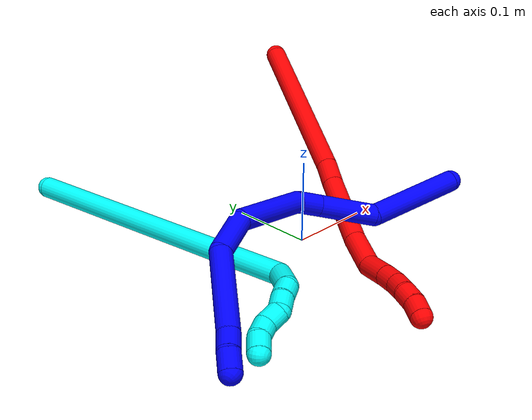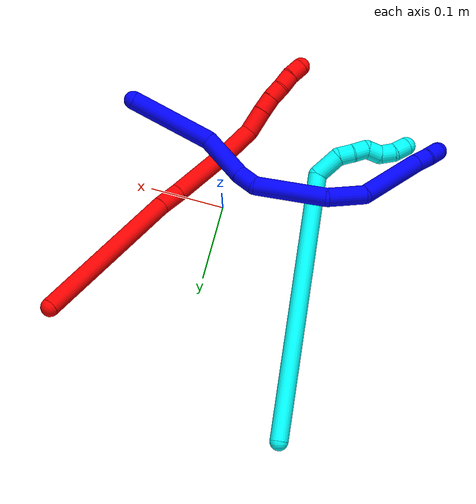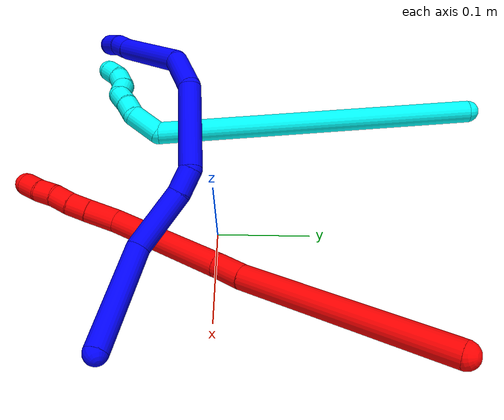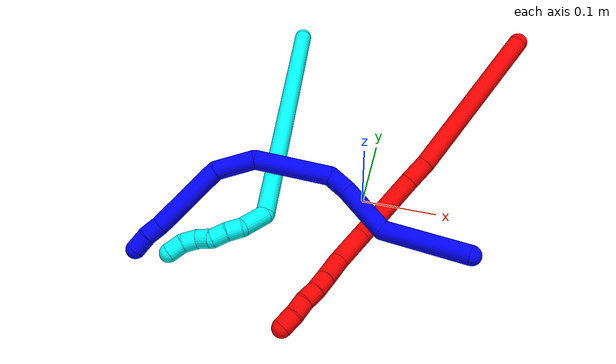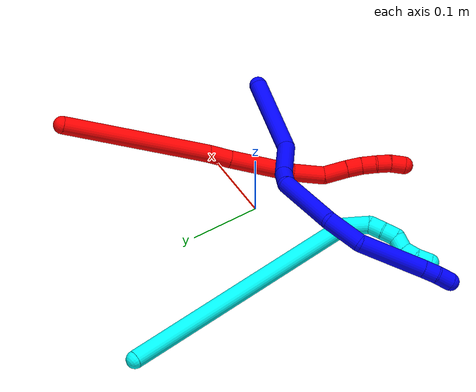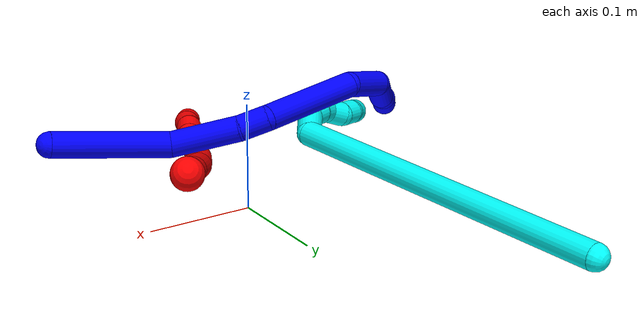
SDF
<sdf version="1.7">
 <world name="default">
  <plugin name="TubeGeneratorPlugin" filename="libtube_generator_plugin.so"/>
  <model name="photoneo_s_sensor">
   <static>1</static>
   <pose>0 0 2 1.57079 1.57079 3.14159</pose>
   <link name="link">
    <inertial><mass>0.1</mass></inertial>
    <sensor name="sensor" type="depth">
     <update_rate>30</update_rate>
     <camera>
      <horizontal_fov>1.22</horizontal_fov>
      <image><width>1920</width><height>1200</height><format>B8G8R8</format></image>
      <clip><near>0.1</near><far>4</far></clip>
      <depth_camera><output>points</output></depth_camera>
     </camera>
     <plugin name="camera_plugin" filename="libgazebo_ros_depth_camera.so">
      <baseline>0.2</baseline>
      <alwaysOn>1</alwaysOn>
      <updateRate>0.0</updateRate>
      <cameraName>camera_ir</cameraName>
      <imageTopicName>/camera/color/image_raw</imageTopicName>
      <cameraInfoTopicName>/camera/color/camera_info</cameraInfoTopicName>
      <depthImageTopicName>/camera/depth/image_raw</depthImageTopicName>
      <depthImageCameraInfoTopicName>/camera/depth/camera_info</depthImageCameraInfoTopicName>
      <pointCloudTopicName>/camera/depth/points</pointCloudTopicName>
      <frameName>fr_optical</frameName>
      <pointCloudCutoff>0.1</pointCloudCutoff>
      <pointCloudCutoffMax>2.0</pointCloudCutoffMax>
      <distortionK1>0</distortionK1>
      <distortionK2>0</distortionK2>
      <distortionK3>0</distortionK3>
      <distortionT1>0</distortionT1>
      <distortionT2>0</distortionT2>
      <CxPrime>0</CxPrime>
      <Cx>0</Cx>
      <Cy>0</Cy>
      <focalLength>0</focalLength>
      <hackBaseline>0</hackBaseline>
     </plugin>
    </sensor>
   </link>
  </model>
  <gravity>0 0 -9.8</gravity>
  <magnetic_field>6e-06 2.3e-05 -4.2e-05</magnetic_field>
  <atmosphere type="adiabatic"/>
  <physics name="default_physics" default="0" type="ode">
   <max_step_size>0.003</max_step_size>
   <real_time_factor>1</real_time_factor>
   <real_time_update_rate>1000</real_time_update_rate>
   <max_contacts>10000</max_contacts>
   <ode>
    <solver>
     <type>quick</type>
     <iters>100</iters>
     <sor>1.3</sor>
     <use_dynamic_moi_rescaling>0</use_dynamic_moi_rescaling>
    </solver>
    <constraints>
     <contact_max_correcting_vel>0</contact_max_correcting_vel>
     <contact_surface_layer>0.001</contact_surface_layer>
     <cfm>0</cfm>
     <erp>0.2</erp>
    </constraints>
   </ode>
  </physics>
  <scene><ambient>0.4 0.4 0.4 1</ambient><background>0.7 0.7 0.7 1</background><shadows>0</shadows></scene>
  <audio><device>default</device></audio>
  <spherical_coordinates>
   <surface_model>EARTH_WGS84</surface_model>
   <latitude_deg>0</latitude_deg>
   <longitude_deg>0</longitude_deg>
   <elevation>0</elevation>
   <heading_deg>0</heading_deg>
  </spherical_coordinates>
  <model name="bin">
   <static>1</static>
   <link name="bottom">
    <collision name="collision-bottom">
     <pose>0 0 -0.01 0 -0 0</pose>
     <geometry><box><size>0.8 0.6 0.02</size></box></geometry>
     <surface>
      <friction><ode><mu>100</mu><mu2>100</mu2></ode></friction>
      <contact><collide_bitmask>65535</collide_bitmask></contact>
     </surface>
    </collision>
   </link>
   <link name="west_wall">
    <collision name="collision-west_wall">
     <pose>-0.41 0 0.1 0 -0 0</pose>
     <geometry><box><size>0.02 0.6 0.2</size></box></geometry>
     <surface>
      <friction><ode><mu>100</mu><mu2>100</mu2></ode></friction>
      <contact><collide_bitmask>65535</collide_bitmask></contact>
     </surface>
    </collision>
   </link>
   <link name="east_wall">
    <collision name="collision-east_wall">
     <pose>0.41 0 0.1 0 -0 0</pose>
     <geometry><box><size>0.02 0.6 0.2</size></box></geometry>
     <surface>
      <friction><ode><mu>100</mu><mu2>100</mu2></ode></friction>
      <contact><collide_bitmask>65535</collide_bitmask></contact>
     </surface>
    </collision>
   </link>
   <link name="south_wall">
    <collision name="collision-south_wall">
     <pose>0 -0.31 0.1 0 -0 0</pose>
     <geometry><box><size>0.8 0.02 0.2</size></box></geometry>
     <surface>
      <friction><ode><mu>100</mu><mu2>100</mu2></ode></friction>
      <contact><collide_bitmask>65535</collide_bitmask></contact>
     </surface>
    </collision>
   </link>
   <link name="north_wall">
    <collision name="collision-north_wall">
     <pose>0 0.31 0.1 0 -0 0</pose>
     <geometry><box><size>0.8 0.02 0.2</size></box></geometry>
     <surface>
      <friction><ode><mu>100</mu><mu2>100</mu2></ode></friction>
      <contact><collide_bitmask>65535</collide_bitmask></contact>
     </surface>
    </collision>
   </link>
  </model>
  <model name="1">
   <static>0</static>
   <link name="1">
    <collision name="collision-cylinder-e_1_1_4">
     <pose>-0.017072 0.028036 -0.046631 -2.60027 -0.30403 1.00894</pose>
     <geometry><cylinder><radius>0.0125</radius><length>0.114051</length></cylinder></geometry>
     <surface>
      <friction><ode><mu>1.16</mu><mu2>1.16</mu2><slip1>0</slip1><slip2>0</slip2></ode></friction>
      <contact><ode><kp>1e+06</kp><kd>1</kd><max_vel>0</max_vel><min_depth>0.001</min_depth></ode></contact>
     </surface>
    </collision>
    <visual name="visual-cylinder-e_1_1_4">
     <pose>-0.017072 0.028036 -0.046631 -2.60027 -0.30403 1.00894</pose>
     <geometry><cylinder><radius>0.0125</radius><length>0.114051</length></cylinder></geometry>
     <material><ambient>0 0 1 1</ambient></material>
    </visual>
    <collision name="collision-cylinder-e_2_4_5">
     <pose>-0.056649 0.076939 -0.107411 -2.16662 -0.728742 1.24727</pose>
     <geometry><cylinder><radius>0.0125</radius><length>0.067591</length></cylinder></geometry>
     <surface>
      <friction><ode><mu>1.16</mu><mu2>1.16</mu2><slip1>0</slip1><slip2>0</slip2></ode></friction>
      <contact><ode><kp>1e+06</kp><kd>1</kd><max_vel>0</max_vel><min_depth>0.001</min_depth></ode></contact>
     </surface>
    </collision>
    <visual name="visual-cylinder-e_2_4_5">
     <pose>-0.056649 0.076939 -0.107411 -2.16662 -0.728742 1.24727</pose>
     <geometry><cylinder><radius>0.0125</radius><length>0.067591</length></cylinder></geometry>
     <material><ambient>0 0 1 1</ambient></material>
    </visual>
    <collision name="collision-cylinder-e_3_5_6">
     <pose>-0.089016 0.104255 -0.128937 -2.42324 -0.78865 1.67342</pose>
     <geometry><cylinder><radius>0.0125</radius><length>0.027804</length></cylinder></geometry>
     <surface>
      <friction><ode><mu>1.16</mu><mu2>1.16</mu2><slip1>0</slip1><slip2>0</slip2></ode></friction>
      <contact><ode><kp>1e+06</kp><kd>1</kd><max_vel>0</max_vel><min_depth>0.001</min_depth></ode></contact>
     </surface>
    </collision>
    <visual name="visual-cylinder-e_3_5_6">
     <pose>-0.089016 0.104255 -0.128937 -2.42324 -0.78865 1.67342</pose>
     <geometry><cylinder><radius>0.0125</radius><length>0.027804</length></cylinder></geometry>
     <material><ambient>0 0 1 1</ambient></material>
    </visual>
    <collision name="collision-cylinder-e_4_6_7">
     <pose>-0.122125 0.1181 -0.178429 -2.96776 -0.497967 2.48129</pose>
     <geometry><cylinder><radius>0.0125</radius><length>0.09734</length></cylinder></geometry>
     <surface>
      <friction><ode><mu>1.16</mu><mu2>1.16</mu2><slip1>0</slip1><slip2>0</slip2></ode></friction>
      <contact><ode><kp>1e+06</kp><kd>1</kd><max_vel>0</max_vel><min_depth>0.001</min_depth></ode></contact>
     </surface>
    </collision>
    <visual name="visual-cylinder-e_4_6_7">
     <pose>-0.122125 0.1181 -0.178429 -2.96776 -0.497967 2.48129</pose>
     <geometry><cylinder><radius>0.0125</radius><length>0.09734</length></cylinder></geometry>
     <material><ambient>0 0 1 1</ambient></material>
    </visual>
    <collision name="collision-cylinder-e_5_7_8">
     <pose>-0.146292 0.12554 -0.246627 -3.13988 -0.035246 3.04462</pose>
     <geometry><cylinder><radius>0.0125</radius><length>0.052199</length></cylinder></geometry>
     <surface>
      <friction><ode><mu>1.16</mu><mu2>1.16</mu2><slip1>0</slip1><slip2>0</slip2></ode></friction>
      <contact><ode><kp>1e+06</kp><kd>1</kd><max_vel>0</max_vel><min_depth>0.001</min_depth></ode></contact>
     </surface>
    </collision>
    <visual name="visual-cylinder-e_5_7_8">
     <pose>-0.146292 0.12554 -0.246627 -3.13988 -0.035246 3.04462</pose>
     <geometry><cylinder><radius>0.0125</radius><length>0.052199</length></cylinder></geometry>
     <material><ambient>0 0 1 1</ambient></material>
    </visual>
    <collision name="collision-cylinder-e_6_8_9">
     <pose>-0.129732 0.110482 -0.315474 2.8021 0.367873 1.65269</pose>
     <geometry><cylinder><radius>0.0125</radius><length>0.097207</length></cylinder></geometry>
     <surface>
      <friction><ode><mu>1.16</mu><mu2>1.16</mu2><slip1>0</slip1><slip2>0</slip2></ode></friction>
      <contact><ode><kp>1e+06</kp><kd>1</kd><max_vel>0</max_vel><min_depth>0.001</min_depth></ode></contact>
     </surface>
    </collision>
    <visual name="visual-cylinder-e_6_8_9">
     <pose>-0.129732 0.110482 -0.315474 2.8021 0.367873 1.65269</pose>
     <geometry><cylinder><radius>0.0125</radius><length>0.097207</length></cylinder></geometry>
     <material><ambient>0 0 1 1</ambient></material>
    </visual>
    <collision name="collision-cylinder-e_7_9_10">
     <pose>-0.109486 0.092473 -0.367874 2.84872 0.268213 1.48179</pose>
     <geometry><cylinder><radius>0.0125</radius><length>0.020877</length></cylinder></geometry>
     <surface>
      <friction><ode><mu>1.16</mu><mu2>1.16</mu2><slip1>0</slip1><slip2>0</slip2></ode></friction>
      <contact><ode><kp>1e+06</kp><kd>1</kd><max_vel>0</max_vel><min_depth>0.001</min_depth></ode></contact>
     </surface>
    </collision>
    <visual name="visual-cylinder-e_7_9_10">
     <pose>-0.109486 0.092473 -0.367874 2.84872 0.268213 1.48179</pose>
     <geometry><cylinder><radius>0.0125</radius><length>0.020877</length></cylinder></geometry>
     <material><ambient>0 0 1 1</ambient></material>
    </visual>
    <collision name="collision-cylinder-e_8_10_2">
     <pose>-0.10136 0.086844 -0.387273 2.86957 0.48647 2.13358</pose>
     <geometry><cylinder><radius>0.0125</radius><length>0.02293</length></cylinder></geometry>
     <surface>
      <friction><ode><mu>1.16</mu><mu2>1.16</mu2><slip1>0</slip1><slip2>0</slip2></ode></friction>
      <contact><ode><kp>1e+06</kp><kd>1</kd><max_vel>0</max_vel><min_depth>0.001</min_depth></ode></contact>
     </surface>
    </collision>
    <visual name="visual-cylinder-e_8_10_2">
     <pose>-0.10136 0.086844 -0.387273 2.86957 0.48647 2.13358</pose>
     <geometry><cylinder><radius>0.0125</radius><length>0.02293</length></cylinder></geometry>
     <material><ambient>0 0 1 1</ambient></material>
    </visual>
    <collision name="collision-sphere-2">
     <pose>-0.096 0.084121 -0.397035 0 -0 0</pose>
     <geometry><sphere><radius>0.0125</radius></sphere></geometry>
     <surface>
      <friction><ode><mu>1.16</mu><mu2>1.16</mu2><slip1>0</slip1><slip2>0</slip2></ode></friction>
      <contact><ode><kp>1e+06</kp><kd>1</kd><max_vel>0</max_vel><min_depth>0.001</min_depth></ode></contact>
     </surface>
    </collision>
    <visual name="visual-sphere-2">
     <pose>-0.096 0.084121 -0.397035 0 -0 0</pose>
     <geometry><sphere><radius>0.0125</radius></sphere></geometry>
     <material><ambient>0 0 1 1</ambient></material>
    </visual>
    <collision name="collision-sphere-10">
     <pose>-0.10672 0.089567 -0.377511 0 -0 0</pose>
     <geometry><sphere><radius>0.0125</radius></sphere></geometry>
     <surface>
      <friction><ode><mu>1.16</mu><mu2>1.16</mu2><slip1>0</slip1><slip2>0</slip2></ode></friction>
      <contact><ode><kp>1e+06</kp><kd>1</kd><max_vel>0</max_vel><min_depth>0.001</min_depth></ode></contact>
     </surface>
    </collision>
    <visual name="visual-sphere-10">
     <pose>-0.10672 0.089567 -0.377511 0 -0 0</pose>
     <geometry><sphere><radius>0.0125</radius></sphere></geometry>
     <material><ambient>0 0 1 1</ambient></material>
    </visual>
    <collision name="collision-sphere-9">
     <pose>-0.112253 0.095379 -0.358237 0 -0 0</pose>
     <geometry><sphere><radius>0.0125</radius></sphere></geometry>
     <surface>
      <friction><ode><mu>1.16</mu><mu2>1.16</mu2><slip1>0</slip1><slip2>0</slip2></ode></friction>
      <contact><ode><kp>1e+06</kp><kd>1</kd><max_vel>0</max_vel><min_depth>0.001</min_depth></ode></contact>
     </surface>
    </collision>
    <visual name="visual-sphere-9">
     <pose>-0.112253 0.095379 -0.358237 0 -0 0</pose>
     <geometry><sphere><radius>0.0125</radius></sphere></geometry>
     <material><ambient>0 0 1 1</ambient></material>
    </visual>
    <collision name="collision-sphere-4">
     <pose>-0.034143 0.056072 -0.093262 0 -0 0</pose>
     <geometry><sphere><radius>0.0125</radius></sphere></geometry>
     <surface>
      <friction><ode><mu>1.16</mu><mu2>1.16</mu2><slip1>0</slip1><slip2>0</slip2></ode></friction>
      <contact><ode><kp>1e+06</kp><kd>1</kd><max_vel>0</max_vel><min_depth>0.001</min_depth></ode></contact>
     </surface>
    </collision>
    <visual name="visual-sphere-4">
     <pose>-0.034143 0.056072 -0.093262 0 -0 0</pose>
     <geometry><sphere><radius>0.0125</radius></sphere></geometry>
     <material><ambient>0 0 1 1</ambient></material>
    </visual>
    <collision name="collision-sphere-1">
     <geometry><sphere><radius>0.0125</radius></sphere></geometry>
     <surface>
      <friction><ode><mu>1.16</mu><mu2>1.16</mu2><slip1>0</slip1><slip2>0</slip2></ode></friction>
      <contact><ode><kp>1e+06</kp><kd>1</kd><max_vel>0</max_vel><min_depth>0.001</min_depth></ode></contact>
     </surface>
    </collision>
    <visual name="visual-sphere-1">
     <geometry><sphere><radius>0.0125</radius></sphere></geometry>
     <material><ambient>0 0 1 1</ambient></material>
    </visual>
    <collision name="collision-sphere-8">
     <pose>-0.147212 0.125584 -0.27271 0 -0 0</pose>
     <geometry><sphere><radius>0.0125</radius></sphere></geometry>
     <surface>
      <friction><ode><mu>1.16</mu><mu2>1.16</mu2><slip1>0</slip1><slip2>0</slip2></ode></friction>
      <contact><ode><kp>1e+06</kp><kd>1</kd><max_vel>0</max_vel><min_depth>0.001</min_depth></ode></contact>
     </surface>
    </collision>
    <visual name="visual-sphere-8">
     <pose>-0.147212 0.125584 -0.27271 0 -0 0</pose>
     <geometry><sphere><radius>0.0125</radius></sphere></geometry>
     <material><ambient>0 0 1 1</ambient></material>
    </visual>
    <collision name="collision-sphere-5">
     <pose>-0.079154 0.097807 -0.12156 0 -0 0</pose>
     <geometry><sphere><radius>0.0125</radius></sphere></geometry>
     <surface>
      <friction><ode><mu>1.16</mu><mu2>1.16</mu2><slip1>0</slip1><slip2>0</slip2></ode></friction>
      <contact><ode><kp>1e+06</kp><kd>1</kd><max_vel>0</max_vel><min_depth>0.001</min_depth></ode></contact>
     </surface>
    </collision>
    <visual name="visual-sphere-5">
     <pose>-0.079154 0.097807 -0.12156 0 -0 0</pose>
     <geometry><sphere><radius>0.0125</radius></sphere></geometry>
     <material><ambient>0 0 1 1</ambient></material>
    </visual>
    <collision name="collision-sphere-6">
     <pose>-0.098879 0.110704 -0.136314 0 -0 0</pose>
     <geometry><sphere><radius>0.0125</radius></sphere></geometry>
     <surface>
      <friction><ode><mu>1.16</mu><mu2>1.16</mu2><slip1>0</slip1><slip2>0</slip2></ode></friction>
      <contact><ode><kp>1e+06</kp><kd>1</kd><max_vel>0</max_vel><min_depth>0.001</min_depth></ode></contact>
     </surface>
    </collision>
    <visual name="visual-sphere-6">
     <pose>-0.098879 0.110704 -0.136314 0 -0 0</pose>
     <geometry><sphere><radius>0.0125</radius></sphere></geometry>
     <material><ambient>0 0 1 1</ambient></material>
    </visual>
    <collision name="collision-sphere-7">
     <pose>-0.145372 0.125495 -0.220544 0 -0 0</pose>
     <geometry><sphere><radius>0.0125</radius></sphere></geometry>
     <surface>
      <friction><ode><mu>1.16</mu><mu2>1.16</mu2><slip1>0</slip1><slip2>0</slip2></ode></friction>
      <contact><ode><kp>1e+06</kp><kd>1</kd><max_vel>0</max_vel><min_depth>0.001</min_depth></ode></contact>
     </surface>
    </collision>
    <visual name="visual-sphere-7">
     <pose>-0.145372 0.125495 -0.220544 0 -0 0</pose>
     <geometry><sphere><radius>0.0125</radius></sphere></geometry>
     <material><ambient>0 0 1 1</ambient></material>
    </visual>
    <inertial>
     <pose>-0.089992 0.088014 -0.187264 0 -0 0</pose>
     <mass>0.5</mass>
     <inertia>
      <ixx>0.000235</ixx>
      <ixy>0</ixy>
      <ixz>0</ixz>
      <iyy>0.000322</iyy>
      <iyz>0</iyz>
      <izz>-3.1e-05</izz>
     </inertia>
    </inertial>
   </link>
   <pose>0.149967 -0.098727 0.060889 -0.956548 1.10235 -0.606717</pose>
  </model>
  <model name="2">
   <static>0</static>
   <link name="2">
    <collision name="collision-cylinder-e_1_1_4">
     <pose>-0.032726 -0.014252 -0.10062 3.00089 -0.31154 -2.29802</pose>
     <geometry><cylinder><radius>0.0125</radius><length>0.213527</length></cylinder></geometry>
     <surface>
      <friction><ode><mu>1.16</mu><mu2>1.16</mu2><slip1>0</slip1><slip2>0</slip2></ode></friction>
      <contact><ode><kp>1e+06</kp><kd>1</kd><max_vel>0</max_vel><min_depth>0.001</min_depth></ode></contact>
     </surface>
    </collision>
    <visual name="visual-cylinder-e_1_1_4">
     <pose>-0.032726 -0.014252 -0.10062 3.00089 -0.31154 -2.29802</pose>
     <geometry><cylinder><radius>0.0125</radius><length>0.213527</length></cylinder></geometry>
     <material><ambient>1 0 0 1</ambient></material>
    </visual>
    <collision name="collision-cylinder-e_2_4_5">
     <pose>-0.071212 -0.029461 -0.21597 3.07668 -0.372101 -2.79995</pose>
     <geometry><cylinder><radius>0.0125</radius><length>0.031689</length></cylinder></geometry>
     <surface>
      <friction><ode><mu>1.16</mu><mu2>1.16</mu2><slip1>0</slip1><slip2>0</slip2></ode></friction>
      <contact><ode><kp>1e+06</kp><kd>1</kd><max_vel>0</max_vel><min_depth>0.001</min_depth></ode></contact>
     </surface>
    </collision>
    <visual name="visual-cylinder-e_2_4_5">
     <pose>-0.071212 -0.029461 -0.21597 3.07668 -0.372101 -2.79995</pose>
     <geometry><cylinder><radius>0.0125</radius><length>0.031689</length></cylinder></geometry>
     <material><ambient>1 0 0 1</ambient></material>
    </visual>
    <collision name="collision-cylinder-e_3_5_6">
     <pose>-0.093792 -0.035066 -0.273478 3.03336 -0.3726 -2.58191</pose>
     <geometry><cylinder><radius>0.0125</radius><length>0.092403</length></cylinder></geometry>
     <surface>
      <friction><ode><mu>1.16</mu><mu2>1.16</mu2><slip1>0</slip1><slip2>0</slip2></ode></friction>
      <contact><ode><kp>1e+06</kp><kd>1</kd><max_vel>0</max_vel><min_depth>0.001</min_depth></ode></contact>
     </surface>
    </collision>
    <visual name="visual-cylinder-e_3_5_6">
     <pose>-0.093792 -0.035066 -0.273478 3.03336 -0.3726 -2.58191</pose>
     <geometry><cylinder><radius>0.0125</radius><length>0.092403</length></cylinder></geometry>
     <material><ambient>1 0 0 1</ambient></material>
    </visual>
    <collision name="collision-cylinder-e_4_6_7">
     <pose>-0.120447 -0.044202 -0.336175 2.91997 -0.448931 -2.23466</pose>
     <geometry><cylinder><radius>0.0125</radius><length>0.045324</length></cylinder></geometry>
     <surface>
      <friction><ode><mu>1.16</mu><mu2>1.16</mu2><slip1>0</slip1><slip2>0</slip2></ode></friction>
      <contact><ode><kp>1e+06</kp><kd>1</kd><max_vel>0</max_vel><min_depth>0.001</min_depth></ode></contact>
     </surface>
    </collision>
    <visual name="visual-cylinder-e_4_6_7">
     <pose>-0.120447 -0.044202 -0.336175 2.91997 -0.448931 -2.23466</pose>
     <geometry><cylinder><radius>0.0125</radius><length>0.045324</length></cylinder></geometry>
     <material><ambient>1 0 0 1</ambient></material>
    </visual>
    <collision name="collision-cylinder-e_5_7_8">
     <pose>-0.1393 -0.057093 -0.367577 2.50996 -0.564823 -1.45233</pose>
     <geometry><cylinder><radius>0.0125</radius><length>0.033695</length></cylinder></geometry>
     <surface>
      <friction><ode><mu>1.16</mu><mu2>1.16</mu2><slip1>0</slip1><slip2>0</slip2></ode></friction>
      <contact><ode><kp>1e+06</kp><kd>1</kd><max_vel>0</max_vel><min_depth>0.001</min_depth></ode></contact>
     </surface>
    </collision>
    <visual name="visual-cylinder-e_5_7_8">
     <pose>-0.1393 -0.057093 -0.367577 2.50996 -0.564823 -1.45233</pose>
     <geometry><cylinder><radius>0.0125</radius><length>0.033695</length></cylinder></geometry>
     <material><ambient>1 0 0 1</ambient></material>
    </visual>
    <collision name="collision-cylinder-e_6_8_9">
     <pose>-0.154134 -0.070447 -0.386865 2.57618 -0.56175 -1.56393</pose>
     <geometry><cylinder><radius>0.0125</radius><length>0.021838</length></cylinder></geometry>
     <surface>
      <friction><ode><mu>1.16</mu><mu2>1.16</mu2><slip1>0</slip1><slip2>0</slip2></ode></friction>
      <contact><ode><kp>1e+06</kp><kd>1</kd><max_vel>0</max_vel><min_depth>0.001</min_depth></ode></contact>
     </surface>
    </collision>
    <visual name="visual-cylinder-e_6_8_9">
     <pose>-0.154134 -0.070447 -0.386865 2.57618 -0.56175 -1.56393</pose>
     <geometry><cylinder><radius>0.0125</radius><length>0.021838</length></cylinder></geometry>
     <material><ambient>1 0 0 1</ambient></material>
    </visual>
    <collision name="collision-cylinder-e_7_9_10">
     <pose>-0.166109 -0.078825 -0.40201 2.70483 -0.649901 -1.97663</pose>
     <geometry><cylinder><radius>0.0125</radius><length>0.020355</length></cylinder></geometry>
     <surface>
      <friction><ode><mu>1.16</mu><mu2>1.16</mu2><slip1>0</slip1><slip2>0</slip2></ode></friction>
      <contact><ode><kp>1e+06</kp><kd>1</kd><max_vel>0</max_vel><min_depth>0.001</min_depth></ode></contact>
     </surface>
    </collision>
    <visual name="visual-cylinder-e_7_9_10">
     <pose>-0.166109 -0.078825 -0.40201 2.70483 -0.649901 -1.97663</pose>
     <geometry><cylinder><radius>0.0125</radius><length>0.020355</length></cylinder></geometry>
     <material><ambient>1 0 0 1</ambient></material>
    </visual>
    <collision name="collision-cylinder-e_8_10_11">
     <pose>-0.176598 -0.085746 -0.417792 2.74916 -0.442761 -1.69473</pose>
     <geometry><cylinder><radius>0.0125</radius><length>0.020217</length></cylinder></geometry>
     <surface>
      <friction><ode><mu>1.16</mu><mu2>1.16</mu2><slip1>0</slip1><slip2>0</slip2></ode></friction>
      <contact><ode><kp>1e+06</kp><kd>1</kd><max_vel>0</max_vel><min_depth>0.001</min_depth></ode></contact>
     </surface>
    </collision>
    <visual name="visual-cylinder-e_8_10_11">
     <pose>-0.176598 -0.085746 -0.417792 2.74916 -0.442761 -1.69473</pose>
     <geometry><cylinder><radius>0.0125</radius><length>0.020217</length></cylinder></geometry>
     <material><ambient>1 0 0 1</ambient></material>
    </visual>
    <collision name="collision-cylinder-e_9_11_2">
     <pose>-0.185608 -0.090857 -0.435463 2.96811 -0.463019 -2.4348</pose>
     <geometry><cylinder><radius>0.0125</radius><length>0.020951</length></cylinder></geometry>
     <surface>
      <friction><ode><mu>1.16</mu><mu2>1.16</mu2><slip1>0</slip1><slip2>0</slip2></ode></friction>
      <contact><ode><kp>1e+06</kp><kd>1</kd><max_vel>0</max_vel><min_depth>0.001</min_depth></ode></contact>
     </surface>
    </collision>
    <visual name="visual-cylinder-e_9_11_2">
     <pose>-0.185608 -0.090857 -0.435463 2.96811 -0.463019 -2.4348</pose>
     <geometry><cylinder><radius>0.0125</radius><length>0.020951</length></cylinder></geometry>
     <material><ambient>1 0 0 1</ambient></material>
    </visual>
    <collision name="collision-sphere-2">
     <pose>-0.190287 -0.092474 -0.444695 0 -0 0</pose>
     <geometry><sphere><radius>0.0125</radius></sphere></geometry>
     <surface>
      <friction><ode><mu>1.16</mu><mu2>1.16</mu2><slip1>0</slip1><slip2>0</slip2></ode></friction>
      <contact><ode><kp>1e+06</kp><kd>1</kd><max_vel>0</max_vel><min_depth>0.001</min_depth></ode></contact>
     </surface>
    </collision>
    <visual name="visual-sphere-2">
     <pose>-0.190287 -0.092474 -0.444695 0 -0 0</pose>
     <geometry><sphere><radius>0.0125</radius></sphere></geometry>
     <material><ambient>1 0 0 1</ambient></material>
    </visual>
    <collision name="collision-sphere-11">
     <pose>-0.180929 -0.089239 -0.426231 0 -0 0</pose>
     <geometry><sphere><radius>0.0125</radius></sphere></geometry>
     <surface>
      <friction><ode><mu>1.16</mu><mu2>1.16</mu2><slip1>0</slip1><slip2>0</slip2></ode></friction>
      <contact><ode><kp>1e+06</kp><kd>1</kd><max_vel>0</max_vel><min_depth>0.001</min_depth></ode></contact>
     </surface>
    </collision>
    <visual name="visual-sphere-11">
     <pose>-0.180929 -0.089239 -0.426231 0 -0 0</pose>
     <geometry><sphere><radius>0.0125</radius></sphere></geometry>
     <material><ambient>1 0 0 1</ambient></material>
    </visual>
    <collision name="collision-sphere-10">
     <pose>-0.172267 -0.082253 -0.409352 0 -0 0</pose>
     <geometry><sphere><radius>0.0125</radius></sphere></geometry>
     <surface>
      <friction><ode><mu>1.16</mu><mu2>1.16</mu2><slip1>0</slip1><slip2>0</slip2></ode></friction>
      <contact><ode><kp>1e+06</kp><kd>1</kd><max_vel>0</max_vel><min_depth>0.001</min_depth></ode></contact>
     </surface>
    </collision>
    <visual name="visual-sphere-10">
     <pose>-0.172267 -0.082253 -0.409352 0 -0 0</pose>
     <geometry><sphere><radius>0.0125</radius></sphere></geometry>
     <material><ambient>1 0 0 1</ambient></material>
    </visual>
    <collision name="collision-sphere-9">
     <pose>-0.15995 -0.075397 -0.394668 0 -0 0</pose>
     <geometry><sphere><radius>0.0125</radius></sphere></geometry>
     <surface>
      <friction><ode><mu>1.16</mu><mu2>1.16</mu2><slip1>0</slip1><slip2>0</slip2></ode></friction>
      <contact><ode><kp>1e+06</kp><kd>1</kd><max_vel>0</max_vel><min_depth>0.001</min_depth></ode></contact>
     </surface>
    </collision>
    <visual name="visual-sphere-9">
     <pose>-0.15995 -0.075397 -0.394668 0 -0 0</pose>
     <geometry><sphere><radius>0.0125</radius></sphere></geometry>
     <material><ambient>1 0 0 1</ambient></material>
    </visual>
    <collision name="collision-sphere-4">
     <pose>-0.065452 -0.028503 -0.20124 0 -0 0</pose>
     <geometry><sphere><radius>0.0125</radius></sphere></geometry>
     <surface>
      <friction><ode><mu>1.16</mu><mu2>1.16</mu2><slip1>0</slip1><slip2>0</slip2></ode></friction>
      <contact><ode><kp>1e+06</kp><kd>1</kd><max_vel>0</max_vel><min_depth>0.001</min_depth></ode></contact>
     </surface>
    </collision>
    <visual name="visual-sphere-4">
     <pose>-0.065452 -0.028503 -0.20124 0 -0 0</pose>
     <geometry><sphere><radius>0.0125</radius></sphere></geometry>
     <material><ambient>1 0 0 1</ambient></material>
    </visual>
    <collision name="collision-sphere-1">
     <geometry><sphere><radius>0.0125</radius></sphere></geometry>
     <surface>
      <friction><ode><mu>1.16</mu><mu2>1.16</mu2><slip1>0</slip1><slip2>0</slip2></ode></friction>
      <contact><ode><kp>1e+06</kp><kd>1</kd><max_vel>0</max_vel><min_depth>0.001</min_depth></ode></contact>
     </surface>
    </collision>
    <visual name="visual-sphere-1">
     <geometry><sphere><radius>0.0125</radius></sphere></geometry>
     <material><ambient>1 0 0 1</ambient></material>
    </visual>
    <collision name="collision-sphere-8">
     <pose>-0.148318 -0.065496 -0.379063 0 -0 0</pose>
     <geometry><sphere><radius>0.0125</radius></sphere></geometry>
     <surface>
      <friction><ode><mu>1.16</mu><mu2>1.16</mu2><slip1>0</slip1><slip2>0</slip2></ode></friction>
      <contact><ode><kp>1e+06</kp><kd>1</kd><max_vel>0</max_vel><min_depth>0.001</min_depth></ode></contact>
     </surface>
    </collision>
    <visual name="visual-sphere-8">
     <pose>-0.148318 -0.065496 -0.379063 0 -0 0</pose>
     <geometry><sphere><radius>0.0125</radius></sphere></geometry>
     <material><ambient>1 0 0 1</ambient></material>
    </visual>
    <collision name="collision-sphere-5">
     <pose>-0.076973 -0.030418 -0.230699 0 -0 0</pose>
     <geometry><sphere><radius>0.0125</radius></sphere></geometry>
     <surface>
      <friction><ode><mu>1.16</mu><mu2>1.16</mu2><slip1>0</slip1><slip2>0</slip2></ode></friction>
      <contact><ode><kp>1e+06</kp><kd>1</kd><max_vel>0</max_vel><min_depth>0.001</min_depth></ode></contact>
     </surface>
    </collision>
    <visual name="visual-sphere-5">
     <pose>-0.076973 -0.030418 -0.230699 0 -0 0</pose>
     <geometry><sphere><radius>0.0125</radius></sphere></geometry>
     <material><ambient>1 0 0 1</ambient></material>
    </visual>
    <collision name="collision-sphere-6">
     <pose>-0.110611 -0.039715 -0.316258 0 -0 0</pose>
     <geometry><sphere><radius>0.0125</radius></sphere></geometry>
     <surface>
      <friction><ode><mu>1.16</mu><mu2>1.16</mu2><slip1>0</slip1><slip2>0</slip2></ode></friction>
      <contact><ode><kp>1e+06</kp><kd>1</kd><max_vel>0</max_vel><min_depth>0.001</min_depth></ode></contact>
     </surface>
    </collision>
    <visual name="visual-sphere-6">
     <pose>-0.110611 -0.039715 -0.316258 0 -0 0</pose>
     <geometry><sphere><radius>0.0125</radius></sphere></geometry>
     <material><ambient>1 0 0 1</ambient></material>
    </visual>
    <collision name="collision-sphere-7">
     <pose>-0.130282 -0.04869 -0.356092 0 -0 0</pose>
     <geometry><sphere><radius>0.0125</radius></sphere></geometry>
     <surface>
      <friction><ode><mu>1.16</mu><mu2>1.16</mu2><slip1>0</slip1><slip2>0</slip2></ode></friction>
      <contact><ode><kp>1e+06</kp><kd>1</kd><max_vel>0</max_vel><min_depth>0.001</min_depth></ode></contact>
     </surface>
    </collision>
    <visual name="visual-sphere-7">
     <pose>-0.130282 -0.04869 -0.356092 0 -0 0</pose>
     <geometry><sphere><radius>0.0125</radius></sphere></geometry>
     <material><ambient>1 0 0 1</ambient></material>
    </visual>
    <inertial>
     <pose>-0.08454 -0.035848 -0.230846 0 -0 0</pose>
     <mass>0.5</mass>
     <inertia>
      <ixx>-0.001232</ixx>
      <ixy>0</ixy>
      <ixz>0</ixz>
      <iyy>-1e-06</iyy>
      <iyz>0</iyz>
      <izz>0.000376</izz>
     </inertia>
    </inertial>
   </link>
   <pose>0.168233 0.206972 0.138411 -0.583798 0.688556 0.346626</pose>
  </model>
  <model name="3">
   <static>0</static>
   <link name="3">
    <collision name="collision-cylinder-e_1_1_4">
     <pose>-0.015802 -0.023165 -0.17839 3.01246 -0.087618 -1.19162</pose>
     <geometry><cylinder><radius>0.0125</radius><length>0.36116</length></cylinder></geometry>
     <surface>
      <friction><ode><mu>1.16</mu><mu2>1.16</mu2><slip1>0</slip1><slip2>0</slip2></ode></friction>
      <contact><ode><kp>1e+06</kp><kd>1</kd><max_vel>0</max_vel><min_depth>0.001</min_depth></ode></contact>
     </surface>
    </collision>
    <visual name="visual-cylinder-e_1_1_4">
     <pose>-0.015802 -0.023165 -0.17839 3.01246 -0.087618 -1.19162</pose>
     <geometry><cylinder><radius>0.0125</radius><length>0.36116</length></cylinder></geometry>
     <material><ambient>0.003922 1 0.996078 1</ambient></material>
    </visual>
    <collision name="collision-cylinder-e_2_4_5">
     <pose>-0.027668 -0.059232 -0.369353 2.34328 0.215065 0.501093</pose>
     <geometry><cylinder><radius>0.0125</radius><length>0.036881</length></cylinder></geometry>
     <surface>
      <friction><ode><mu>1.16</mu><mu2>1.16</mu2><slip1>0</slip1><slip2>0</slip2></ode></friction>
      <contact><ode><kp>1e+06</kp><kd>1</kd><max_vel>0</max_vel><min_depth>0.001</min_depth></ode></contact>
     </surface>
    </collision>
    <visual name="visual-cylinder-e_2_4_5">
     <pose>-0.027668 -0.059232 -0.369353 2.34328 0.215065 0.501093</pose>
     <geometry><cylinder><radius>0.0125</radius><length>0.036881</length></cylinder></geometry>
     <material><ambient>0.003922 1 0.996078 1</ambient></material>
    </visual>
    <collision name="collision-cylinder-e_3_5_6">
     <pose>-0.023034 -0.081827 -0.384709 1.85037 0.069157 0.091777</pose>
     <geometry><cylinder><radius>0.0125</radius><length>0.020216</length></cylinder></geometry>
     <surface>
      <friction><ode><mu>1.16</mu><mu2>1.16</mu2><slip1>0</slip1><slip2>0</slip2></ode></friction>
      <contact><ode><kp>1e+06</kp><kd>1</kd><max_vel>0</max_vel><min_depth>0.001</min_depth></ode></contact>
     </surface>
    </collision>
    <visual name="visual-cylinder-e_3_5_6">
     <pose>-0.023034 -0.081827 -0.384709 1.85037 0.069157 0.091777</pose>
     <geometry><cylinder><radius>0.0125</radius><length>0.020216</length></cylinder></geometry>
     <material><ambient>0.003922 1 0.996078 1</ambient></material>
    </visual>
    <collision name="collision-cylinder-e_4_6_7">
     <pose>-0.023133 -0.100968 -0.390828 1.91031 -0.07938 -0.112163</pose>
     <geometry><cylinder><radius>0.0125</radius><length>0.020103</length></cylinder></geometry>
     <surface>
      <friction><ode><mu>1.16</mu><mu2>1.16</mu2><slip1>0</slip1><slip2>0</slip2></ode></friction>
      <contact><ode><kp>1e+06</kp><kd>1</kd><max_vel>0</max_vel><min_depth>0.001</min_depth></ode></contact>
     </surface>
    </collision>
    <visual name="visual-cylinder-e_4_6_7">
     <pose>-0.023133 -0.100968 -0.390828 1.91031 -0.07938 -0.112163</pose>
     <geometry><cylinder><radius>0.0125</radius><length>0.020103</length></cylinder></geometry>
     <material><ambient>0.003922 1 0.996078 1</ambient></material>
    </visual>
    <collision name="collision-cylinder-e_5_7_8">
     <pose>-0.025444 -0.120176 -0.391086 1.26515 -0.14687 -0.107755</pose>
     <geometry><cylinder><radius>0.0125</radius><length>0.020692</length></cylinder></geometry>
     <surface>
      <friction><ode><mu>1.16</mu><mu2>1.16</mu2><slip1>0</slip1><slip2>0</slip2></ode></friction>
      <contact><ode><kp>1e+06</kp><kd>1</kd><max_vel>0</max_vel><min_depth>0.001</min_depth></ode></contact>
     </surface>
    </collision>
    <visual name="visual-cylinder-e_5_7_8">
     <pose>-0.025444 -0.120176 -0.391086 1.26515 -0.14687 -0.107755</pose>
     <geometry><cylinder><radius>0.0125</radius><length>0.020692</length></cylinder></geometry>
     <material><ambient>0.003922 1 0.996078 1</ambient></material>
    </visual>
    <collision name="collision-cylinder-e_6_8_9">
     <pose>-0.026681 -0.139766 -0.390066 1.7774 0.027563 0.033938</pose>
     <geometry><cylinder><radius>0.0125</radius><length>0.020095</length></cylinder></geometry>
     <surface>
      <friction><ode><mu>1.16</mu><mu2>1.16</mu2><slip1>0</slip1><slip2>0</slip2></ode></friction>
      <contact><ode><kp>1e+06</kp><kd>1</kd><max_vel>0</max_vel><min_depth>0.001</min_depth></ode></contact>
     </surface>
    </collision>
    <visual name="visual-cylinder-e_6_8_9">
     <pose>-0.026681 -0.139766 -0.390066 1.7774 0.027563 0.033938</pose>
     <geometry><cylinder><radius>0.0125</radius><length>0.020095</length></cylinder></geometry>
     <material><ambient>0.003922 1 0.996078 1</ambient></material>
    </visual>
    <collision name="collision-cylinder-e_7_9_2">
     <pose>-0.028341 -0.158613 -0.39699 2.06541 -0.186843 -0.311427</pose>
     <geometry><cylinder><radius>0.0125</radius><length>0.020853</length></cylinder></geometry>
     <surface>
      <friction><ode><mu>1.16</mu><mu2>1.16</mu2><slip1>0</slip1><slip2>0</slip2></ode></friction>
      <contact><ode><kp>1e+06</kp><kd>1</kd><max_vel>0</max_vel><min_depth>0.001</min_depth></ode></contact>
     </surface>
    </collision>
    <visual name="visual-cylinder-e_7_9_2">
     <pose>-0.028341 -0.158613 -0.39699 2.06541 -0.186843 -0.311427</pose>
     <geometry><cylinder><radius>0.0125</radius><length>0.020853</length></cylinder></geometry>
     <material><ambient>0.003922 1 0.996078 1</ambient></material>
    </visual>
    <collision name="collision-sphere-2">
     <pose>-0.030278 -0.16763 -0.401853 0 -0 0</pose>
     <geometry><sphere><radius>0.0125</radius></sphere></geometry>
     <surface>
      <friction><ode><mu>1.16</mu><mu2>1.16</mu2><slip1>0</slip1><slip2>0</slip2></ode></friction>
      <contact><ode><kp>1e+06</kp><kd>1</kd><max_vel>0</max_vel><min_depth>0.001</min_depth></ode></contact>
     </surface>
    </collision>
    <visual name="visual-sphere-2">
     <pose>-0.030278 -0.16763 -0.401853 0 -0 0</pose>
     <geometry><sphere><radius>0.0125</radius></sphere></geometry>
     <material><ambient>0.003922 1 0.996078 1</ambient></material>
    </visual>
    <collision name="collision-sphere-9">
     <pose>-0.026404 -0.149596 -0.392126 0 -0 0</pose>
     <geometry><sphere><radius>0.0125</radius></sphere></geometry>
     <surface>
      <friction><ode><mu>1.16</mu><mu2>1.16</mu2><slip1>0</slip1><slip2>0</slip2></ode></friction>
      <contact><ode><kp>1e+06</kp><kd>1</kd><max_vel>0</max_vel><min_depth>0.001</min_depth></ode></contact>
     </surface>
    </collision>
    <visual name="visual-sphere-9">
     <pose>-0.026404 -0.149596 -0.392126 0 -0 0</pose>
     <geometry><sphere><radius>0.0125</radius></sphere></geometry>
     <material><ambient>0.003922 1 0.996078 1</ambient></material>
    </visual>
    <collision name="collision-sphere-4">
     <pose>-0.031604 -0.04633 -0.356779 0 -0 0</pose>
     <geometry><sphere><radius>0.0125</radius></sphere></geometry>
     <surface>
      <friction><ode><mu>1.16</mu><mu2>1.16</mu2><slip1>0</slip1><slip2>0</slip2></ode></friction>
      <contact><ode><kp>1e+06</kp><kd>1</kd><max_vel>0</max_vel><min_depth>0.001</min_depth></ode></contact>
     </surface>
    </collision>
    <visual name="visual-sphere-4">
     <pose>-0.031604 -0.04633 -0.356779 0 -0 0</pose>
     <geometry><sphere><radius>0.0125</radius></sphere></geometry>
     <material><ambient>0.003922 1 0.996078 1</ambient></material>
    </visual>
    <collision name="collision-sphere-1">
     <geometry><sphere><radius>0.0125</radius></sphere></geometry>
     <surface>
      <friction><ode><mu>1.16</mu><mu2>1.16</mu2><slip1>0</slip1><slip2>0</slip2></ode></friction>
      <contact><ode><kp>1e+06</kp><kd>1</kd><max_vel>0</max_vel><min_depth>0.001</min_depth></ode></contact>
     </surface>
    </collision>
    <visual name="visual-sphere-1">
     <geometry><sphere><radius>0.0125</radius></sphere></geometry>
     <material><ambient>0.003922 1 0.996078 1</ambient></material>
    </visual>
    <collision name="collision-sphere-8">
     <pose>-0.026958 -0.129936 -0.388006 0 -0 0</pose>
     <geometry><sphere><radius>0.0125</radius></sphere></geometry>
     <surface>
      <friction><ode><mu>1.16</mu><mu2>1.16</mu2><slip1>0</slip1><slip2>0</slip2></ode></friction>
      <contact><ode><kp>1e+06</kp><kd>1</kd><max_vel>0</max_vel><min_depth>0.001</min_depth></ode></contact>
     </surface>
    </collision>
    <visual name="visual-sphere-8">
     <pose>-0.026958 -0.129936 -0.388006 0 -0 0</pose>
     <geometry><sphere><radius>0.0125</radius></sphere></geometry>
     <material><ambient>0.003922 1 0.996078 1</ambient></material>
    </visual>
    <collision name="collision-sphere-5">
     <pose>-0.023733 -0.072135 -0.381926 0 -0 0</pose>
     <geometry><sphere><radius>0.0125</radius></sphere></geometry>
     <surface>
      <friction><ode><mu>1.16</mu><mu2>1.16</mu2><slip1>0</slip1><slip2>0</slip2></ode></friction>
      <contact><ode><kp>1e+06</kp><kd>1</kd><max_vel>0</max_vel><min_depth>0.001</min_depth></ode></contact>
     </surface>
    </collision>
    <visual name="visual-sphere-5">
     <pose>-0.023733 -0.072135 -0.381926 0 -0 0</pose>
     <geometry><sphere><radius>0.0125</radius></sphere></geometry>
     <material><ambient>0.003922 1 0.996078 1</ambient></material>
    </visual>
    <collision name="collision-sphere-6">
     <pose>-0.022336 -0.09152 -0.387491 0 -0 0</pose>
     <geometry><sphere><radius>0.0125</radius></sphere></geometry>
     <surface>
      <friction><ode><mu>1.16</mu><mu2>1.16</mu2><slip1>0</slip1><slip2>0</slip2></ode></friction>
      <contact><ode><kp>1e+06</kp><kd>1</kd><max_vel>0</max_vel><min_depth>0.001</min_depth></ode></contact>
     </surface>
    </collision>
    <visual name="visual-sphere-6">
     <pose>-0.022336 -0.09152 -0.387491 0 -0 0</pose>
     <geometry><sphere><radius>0.0125</radius></sphere></geometry>
     <material><ambient>0.003922 1 0.996078 1</ambient></material>
    </visual>
    <collision name="collision-sphere-7">
     <pose>-0.02393 -0.110416 -0.394165 0 -0 0</pose>
     <geometry><sphere><radius>0.0125</radius></sphere></geometry>
     <surface>
      <friction><ode><mu>1.16</mu><mu2>1.16</mu2><slip1>0</slip1><slip2>0</slip2></ode></friction>
      <contact><ode><kp>1e+06</kp><kd>1</kd><max_vel>0</max_vel><min_depth>0.001</min_depth></ode></contact>
     </surface>
    </collision>
    <visual name="visual-sphere-7">
     <pose>-0.02393 -0.110416 -0.394165 0 -0 0</pose>
     <geometry><sphere><radius>0.0125</radius></sphere></geometry>
     <material><ambient>0.003922 1 0.996078 1</ambient></material>
    </visual>
    <inertial>
     <pose>-0.018624 -0.045675 -0.235785 0 -0 0</pose>
     <mass>0.5</mass>
     <inertia>
      <ixx>-0.002181</ixx>
      <ixy>0</ixy>
      <ixz>0</ixz>
      <iyy>-0.005066</iyy>
      <iyz>0</iyz>
      <izz>0.000829</izz>
     </inertia>
    </inertial>
   </link>
   <pose>-0.155682 0.286677 0.023918 2.13956 -1.33573 2.8127</pose>
  </model>
 </world>
</sdf>
